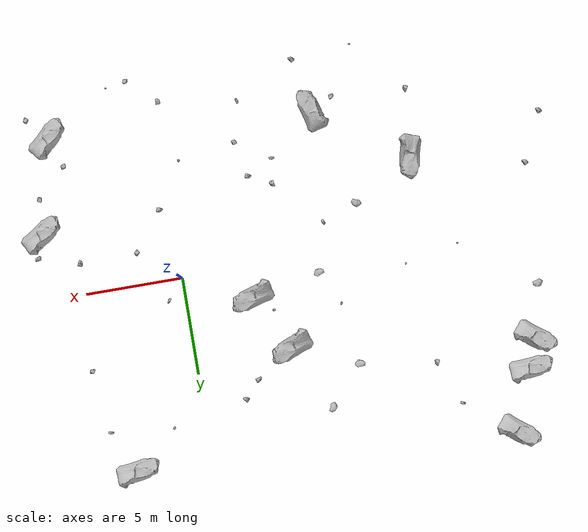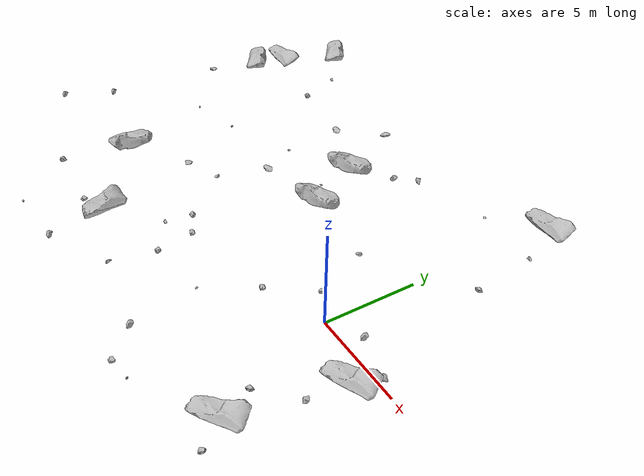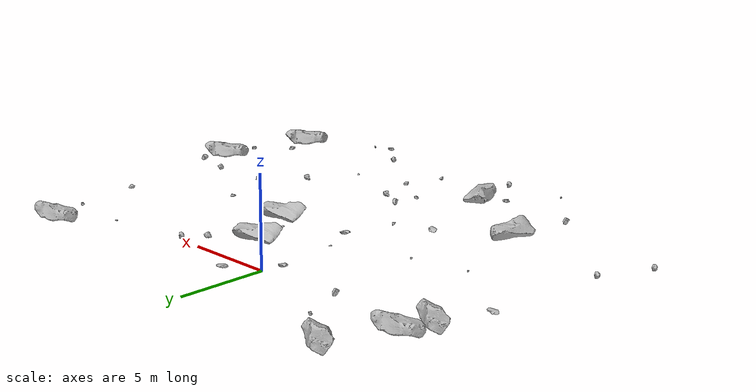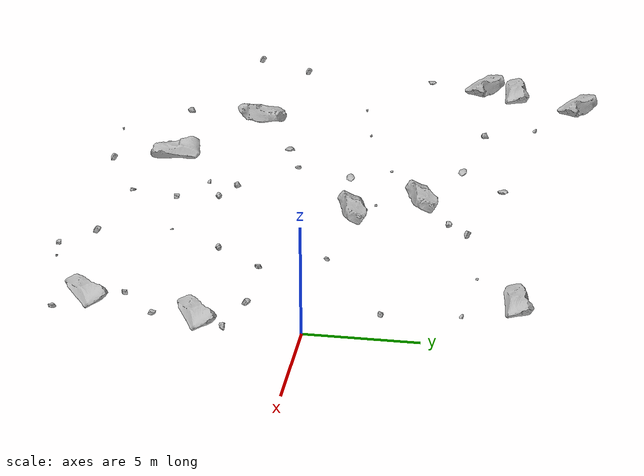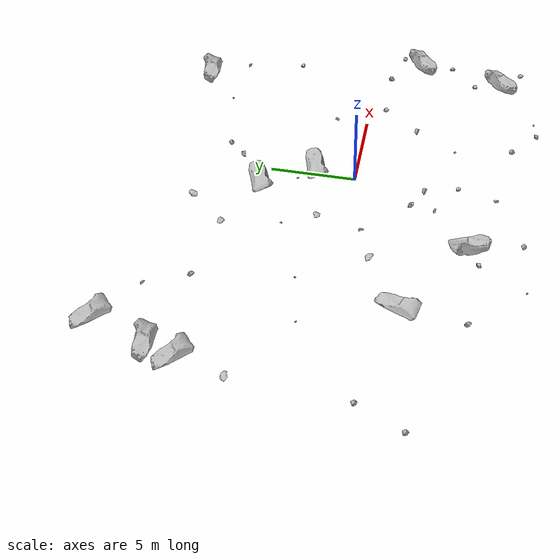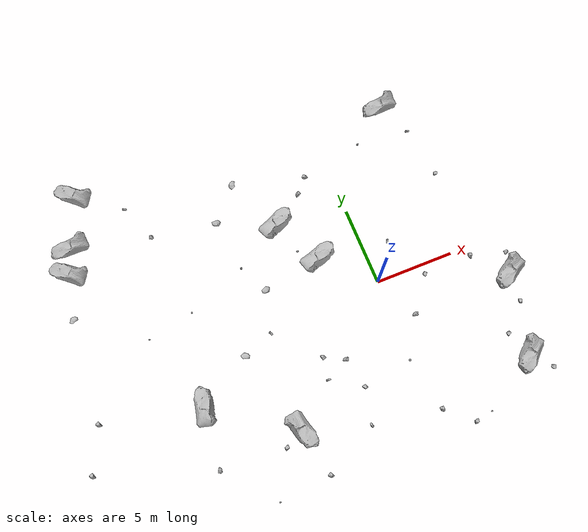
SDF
<sdf version="1.7">
 <world name="marsyard">
  <gravity>0 0 -9.81</gravity>
  <physics name="dart_physics" type="ignored">
   <max_step_size>0.003</max_step_size>
   <real_time_update_rate>333</real_time_update_rate>
   <real_time_factor>1.0</real_time_factor>
  </physics>
  <plugin filename="ignition-gazebo-physics-system" name="ignition::gazebo::systems::Physics"/>
  <plugin filename="ignition-gazebo-user-commands-system" name="ignition::gazebo::systems::UserCommands"/>
  <plugin filename="ignition-gazebo-scene-broadcaster-system" name="ignition::gazebo::systems::SceneBroadcaster"/>
  <plugin filename="ignition-gazebo-contact-system" name="ignition::gazebo::systems::Contact"/>
  <scene>
   <ambient>0.95 0.95 0.95 1</ambient>
   <background>0.70 0.70 0.70 1</background>
   <shadows>false</shadows>
  </scene>
  <light type="directional" name="sun">
   <cast_shadows>false</cast_shadows>
   <pose>0 0 30 0 0 0</pose>
   <diffuse>1 1 1 1</diffuse>
   <specular>0.15 0.15 0.15 1</specular>
   <direction>-0.35 0.1 -0.93</direction>
  </light>
  <model name="Rock_2">
   <static>true</static>
   <pose>0.3303 -3.4318 4.0000 0.0000 0.0000 -0.3512</pose>
   <link name="link">
    <visual name="visual">
     <geometry><mesh><uri>package://rock_generator/rocks_ws/rock_3/meshes/rock_3.stl</uri></mesh></geometry>
    </visual>
    <collision name="collision">
     <geometry><mesh><uri>package://rock_generator/rocks_ws/rock_3/meshes/rock_3.stl</uri></mesh></geometry>
    </collision>
   </link>
  </model>
  <model name="Rock_3">
   <static>true</static>
   <pose>6.2342 -3.1056 4.0000 0.0000 0.0000 0.7417</pose>
   <link name="link">
    <visual name="visual">
     <geometry><mesh><uri>package://rock_generator/rocks_ws/rock_4/meshes/rock_4.stl</uri></mesh></geometry>
    </visual>
    <collision name="collision">
     <geometry><mesh><uri>package://rock_generator/rocks_ws/rock_4/meshes/rock_4.stl</uri></mesh></geometry>
    </collision>
   </link>
  </model>
  <model name="Rock_4">
   <static>true</static>
   <pose>-8.1256 5.8169 4.0000 0.0000 0.0000 -0.2805</pose>
   <link name="link">
    <visual name="visual">
     <geometry><mesh><uri>package://rock_generator/rocks_ws/rock_8/meshes/rock_8.stl</uri></mesh></geometry>
    </visual>
    <collision name="collision">
     <geometry><mesh><uri>package://rock_generator/rocks_ws/rock_8/meshes/rock_8.stl</uri></mesh></geometry>
    </collision>
   </link>
  </model>
  <model name="Rock_5">
   <static>true</static>
   <pose>-4.3923 2.5072 4.0000 0.0000 0.0000 3.0596</pose>
   <link name="link">
    <visual name="visual">
     <geometry><mesh><uri>package://rock_generator/rocks_ws/rock_5/meshes/rock_5.stl</uri></mesh></geometry>
    </visual>
    <collision name="collision">
     <geometry><mesh><uri>package://rock_generator/rocks_ws/rock_5/meshes/rock_5.stl</uri></mesh></geometry>
    </collision>
   </link>
  </model>
  <model name="Rock_6">
   <static>true</static>
   <pose>-4.3188 -8.0412 4.0000 0.0000 0.0000 1.6611</pose>
   <link name="link">
    <visual name="visual">
     <geometry><mesh><uri>package://rock_generator/rocks_ws/rock_6/meshes/rock_6.stl</uri></mesh></geometry>
    </visual>
    <collision name="collision">
     <geometry><mesh><uri>package://rock_generator/rocks_ws/rock_6/meshes/rock_6.stl</uri></mesh></geometry>
    </collision>
   </link>
  </model>
  <model name="Rock_9">
   <static>true</static>
   <pose>-16.8665 6.0268 4.0000 0.0000 0.0000 -0.4904</pose>
   <link name="link">
    <visual name="visual">
     <geometry><mesh><uri>package://rock_generator/rocks_ws/rock_4/meshes/rock_4.stl</uri></mesh></geometry>
    </visual>
    <collision name="collision">
     <geometry><mesh><uri>package://rock_generator/rocks_ws/rock_4/meshes/rock_4.stl</uri></mesh></geometry>
    </collision>
   </link>
  </model>
  <model name="Rock_11">
   <static>true</static>
   <pose>4.9285 3.9514 4.0000 0.0000 0.0000 2.0337</pose>
   <link name="link">
    <visual name="visual">
     <geometry><mesh><uri>package://rock_generator/rocks_ws/rock_1/meshes/rock_1.stl</uri></mesh></geometry>
    </visual>
    <collision name="collision">
     <geometry><mesh><uri>package://rock_generator/rocks_ws/rock_1/meshes/rock_1.stl</uri></mesh></geometry>
    </collision>
   </link>
  </model>
  <model name="Rock_14">
   <static>true</static>
   <pose>-3.4149 1.7093 4.0000 0.0000 0.0000 -2.6896</pose>
   <link name="link">
    <visual name="visual">
     <geometry><mesh><uri>package://rock_generator/rocks_ws/rock_4/meshes/rock_4.stl</uri></mesh></geometry>
    </visual>
    <collision name="collision">
     <geometry><mesh><uri>package://rock_generator/rocks_ws/rock_4/meshes/rock_4.stl</uri></mesh></geometry>
    </collision>
   </link>
  </model>
  <model name="Rock_15">
   <static>true</static>
   <pose>-11.9683 6.4463 4.0000 0.0000 0.0000 -1.9149</pose>
   <link name="link">
    <visual name="visual">
     <geometry><mesh><uri>package://rock_generator/rocks_ws/rock_3/meshes/rock_3.stl</uri></mesh></geometry>
    </visual>
    <collision name="collision">
     <geometry><mesh><uri>package://rock_generator/rocks_ws/rock_3/meshes/rock_3.stl</uri></mesh></geometry>
    </collision>
   </link>
  </model>
  <model name="Rock_16">
   <static>true</static>
   <pose>-5.4471 -3.6963 4.0000 0.0000 0.0000 -1.3734</pose>
   <link name="link">
    <visual name="visual">
     <geometry><mesh><uri>package://rock_generator/rocks_ws/rock_3/meshes/rock_3.stl</uri></mesh></geometry>
    </visual>
    <collision name="collision">
     <geometry><mesh><uri>package://rock_generator/rocks_ws/rock_3/meshes/rock_3.stl</uri></mesh></geometry>
    </collision>
   </link>
  </model>
  <model name="Rock_17">
   <static>true</static>
   <pose>4.5362 7.1053 4.0000 0.0000 0.0000 -0.4085</pose>
   <link name="link">
    <visual name="visual">
     <geometry><mesh><uri>package://rock_generator/rocks_ws/rock_6/meshes/rock_6.stl</uri></mesh></geometry>
    </visual>
    <collision name="collision">
     <geometry><mesh><uri>package://rock_generator/rocks_ws/rock_6/meshes/rock_6.stl</uri></mesh></geometry>
    </collision>
   </link>
  </model>
  <model name="Rock_19">
   <static>true</static>
   <pose>4.6888 -6.2804 4.0000 0.0000 0.0000 2.5442</pose>
   <link name="link">
    <visual name="visual">
     <geometry><mesh><uri>package://rock_generator/rocks_ws/rock_1/meshes/rock_1.stl</uri></mesh></geometry>
    </visual>
    <collision name="collision">
     <geometry><mesh><uri>package://rock_generator/rocks_ws/rock_1/meshes/rock_1.stl</uri></mesh></geometry>
    </collision>
   </link>
  </model>
  <model name="Rock_20">
   <static>true</static>
   <pose>-12.2752 -3.8116 4.0000 0.0000 0.0000 -1.6397</pose>
   <link name="link">
    <visual name="visual">
     <geometry><mesh><uri>package://rock_generator/rocks_ws/rock_4/meshes/rock_4.stl</uri></mesh></geometry>
    </visual>
    <collision name="collision">
     <geometry><mesh><uri>package://rock_generator/rocks_ws/rock_4/meshes/rock_4.stl</uri></mesh></geometry>
    </collision>
   </link>
  </model>
  <model name="Rock_21">
   <static>true</static>
   <pose>6.6583 -1.8551 4.0000 0.0000 0.0000 -3.1263</pose>
   <link name="link">
    <visual name="visual">
     <geometry><mesh><uri>package://rock_generator/rocks_ws/rock_3/meshes/rock_3.stl</uri></mesh></geometry>
    </visual>
    <collision name="collision">
     <geometry><mesh><uri>package://rock_generator/rocks_ws/rock_3/meshes/rock_3.stl</uri></mesh></geometry>
    </collision>
   </link>
  </model>
  <model name="Rock_22">
   <static>true</static>
   <pose>-3.8677 -6.0231 4.0000 0.0000 0.0000 1.0425</pose>
   <link name="link">
    <visual name="visual">
     <geometry><mesh><uri>package://rock_generator/rocks_ws/rock_1/meshes/rock_1.stl</uri></mesh></geometry>
    </visual>
    <collision name="collision">
     <geometry><mesh><uri>package://rock_generator/rocks_ws/rock_1/meshes/rock_1.stl</uri></mesh></geometry>
    </collision>
   </link>
  </model>
  <model name="Rock_23">
   <static>true</static>
   <pose>-0.9796 -5.5935 4.0000 0.0000 0.0000 -0.6540</pose>
   <link name="link">
    <visual name="visual">
     <geometry><mesh><uri>package://rock_generator/rocks_ws/rock_5/meshes/rock_5.stl</uri></mesh></geometry>
    </visual>
    <collision name="collision">
     <geometry><mesh><uri>package://rock_generator/rocks_ws/rock_5/meshes/rock_5.stl</uri></mesh></geometry>
    </collision>
   </link>
  </model>
  <model name="Rock_24">
   <static>true</static>
   <pose>-17.4575 3.4123 4.0000 0.0000 0.0000 3.1124</pose>
   <link name="link">
    <visual name="visual">
     <geometry><mesh><uri>package://rock_generator/rocks_ws/rock_8/meshes/rock_8.stl</uri></mesh></geometry>
    </visual>
    <collision name="collision">
     <geometry><mesh><uri>package://rock_generator/rocks_ws/rock_8/meshes/rock_8.stl</uri></mesh></geometry>
    </collision>
   </link>
  </model>
  <model name="Rock_27">
   <static>true</static>
   <pose>-6.4659 7.7320 4.0000 0.0000 0.0000 -2.2601</pose>
   <link name="link">
    <visual name="visual">
     <geometry><mesh><uri>package://rock_generator/rocks_ws/rock_8/meshes/rock_8.stl</uri></mesh></geometry>
    </visual>
    <collision name="collision">
     <geometry><mesh><uri>package://rock_generator/rocks_ws/rock_8/meshes/rock_8.stl</uri></mesh></geometry>
    </collision>
   </link>
  </model>
  <model name="Rock_29">
   <static>true</static>
   <pose>0.9808 -9.9054 4.0000 0.0000 0.0000 -0.8944</pose>
   <link name="link">
    <visual name="visual">
     <geometry><mesh><uri>package://rock_generator/rocks_ws/rock_1/meshes/rock_1.stl</uri></mesh></geometry>
    </visual>
    <collision name="collision">
     <geometry><mesh><uri>package://rock_generator/rocks_ws/rock_1/meshes/rock_1.stl</uri></mesh></geometry>
    </collision>
   </link>
  </model>
  <model name="Rock_30">
   <static>true</static>
   <pose>5.1803 -7.7557 4.0000 0.0000 0.0000 0.9147</pose>
   <link name="link">
    <visual name="visual">
     <geometry><mesh><uri>package://rock_generator/rocks_ws/rock_4/meshes/rock_4.stl</uri></mesh></geometry>
    </visual>
    <collision name="collision">
     <geometry><mesh><uri>package://rock_generator/rocks_ws/rock_4/meshes/rock_4.stl</uri></mesh></geometry>
    </collision>
   </link>
  </model>
  <model name="Rock_31">
   <static>true</static>
   <pose>-12.7430 -7.1829 4.0000 0.0000 0.0000 -2.0245</pose>
   <link name="link">
    <visual name="visual">
     <geometry><mesh><uri>package://rock_generator/rocks_ws/rock_3/meshes/rock_3.stl</uri></mesh></geometry>
    </visual>
    <collision name="collision">
     <geometry><mesh><uri>package://rock_generator/rocks_ws/rock_3/meshes/rock_3.stl</uri></mesh></geometry>
    </collision>
   </link>
  </model>
  <model name="Rock_33">
   <static>true</static>
   <pose>-17.7862 -2.5647 4.0000 0.0000 0.0000 1.9595</pose>
   <link name="link">
    <visual name="visual">
     <geometry><mesh><uri>package://rock_generator/rocks_ws/rock_3/meshes/rock_3.stl</uri></mesh></geometry>
    </visual>
    <collision name="collision">
     <geometry><mesh><uri>package://rock_generator/rocks_ws/rock_3/meshes/rock_3.stl</uri></mesh></geometry>
    </collision>
   </link>
  </model>
  <model name="Rock_35">
   <static>true</static>
   <pose>1.8194 -1.4427 4.0000 0.0000 0.0000 2.9628</pose>
   <link name="link">
    <visual name="visual">
     <geometry><mesh><uri>package://rock_generator/rocks_ws/rock_1/meshes/rock_1.stl</uri></mesh></geometry>
    </visual>
    <collision name="collision">
     <geometry><mesh><uri>package://rock_generator/rocks_ws/rock_1/meshes/rock_1.stl</uri></mesh></geometry>
    </collision>
   </link>
  </model>
  <model name="Rock_36">
   <static>true</static>
   <pose>1.4273 7.4034 4.0000 0.0000 0.0000 0.8784</pose>
   <link name="link">
    <visual name="visual">
     <geometry><mesh><uri>package://rock_generator/rocks_ws/rock_5/meshes/rock_5.stl</uri></mesh></geometry>
    </visual>
    <collision name="collision">
     <geometry><mesh><uri>package://rock_generator/rocks_ws/rock_5/meshes/rock_5.stl</uri></mesh></geometry>
    </collision>
   </link>
  </model>
  <model name="Rock_37">
   <static>true</static>
   <pose>-7.2449 -9.5647 4.0000 0.0000 0.0000 2.0903</pose>
   <link name="link">
    <visual name="visual">
     <geometry><mesh><uri>package://rock_generator/rocks_ws/rock_3/meshes/rock_3.stl</uri></mesh></geometry>
    </visual>
    <collision name="collision">
     <geometry><mesh><uri>package://rock_generator/rocks_ws/rock_3/meshes/rock_3.stl</uri></mesh></geometry>
    </collision>
   </link>
  </model>
  <model name="Rock_38">
   <static>true</static>
   <pose>0.6354 1.1807 4.0000 0.0000 0.0000 -2.3245</pose>
   <link name="link">
    <visual name="visual">
     <geometry><mesh><uri>package://rock_generator/rocks_ws/rock_6/meshes/rock_6.stl</uri></mesh></geometry>
    </visual>
    <collision name="collision">
     <geometry><mesh><uri>package://rock_generator/rocks_ws/rock_6/meshes/rock_6.stl</uri></mesh></geometry>
    </collision>
   </link>
  </model>
  <model name="Rock_39">
   <static>true</static>
   <pose>-18.8922 -4.9989 4.0000 0.0000 0.0000 1.8228</pose>
   <link name="link">
    <visual name="visual">
     <geometry><mesh><uri>package://rock_generator/rocks_ws/rock_3/meshes/rock_3.stl</uri></mesh></geometry>
    </visual>
    <collision name="collision">
     <geometry><mesh><uri>package://rock_generator/rocks_ws/rock_3/meshes/rock_3.stl</uri></mesh></geometry>
    </collision>
   </link>
  </model>
  <model name="Rock_41">
   <static>true</static>
   <pose>-7.7335 2.7428 4.0000 0.0000 0.0000 1.4465</pose>
   <link name="link">
    <visual name="visual">
     <geometry><mesh><uri>package://rock_generator/rocks_ws/rock_5/meshes/rock_5.stl</uri></mesh></geometry>
    </visual>
    <collision name="collision">
     <geometry><mesh><uri>package://rock_generator/rocks_ws/rock_5/meshes/rock_5.stl</uri></mesh></geometry>
    </collision>
   </link>
  </model>
  <model name="Rock_42">
   <static>true</static>
   <pose>-12.7890 8.6111 4.0000 0.0000 0.0000 -0.5817</pose>
   <link name="link">
    <visual name="visual">
     <geometry><mesh><uri>package://rock_generator/rocks_ws/rock_6/meshes/rock_6.stl</uri></mesh></geometry>
    </visual>
    <collision name="collision">
     <geometry><mesh><uri>package://rock_generator/rocks_ws/rock_6/meshes/rock_6.stl</uri></mesh></geometry>
    </collision>
   </link>
  </model>
  <model name="Rock_43">
   <static>true</static>
   <pose>-11.2032 1.3530 4.0000 0.0000 0.0000 0.9791</pose>
   <link name="link">
    <visual name="visual">
     <geometry><mesh><uri>package://rock_generator/rocks_ws/rock_9/meshes/rock_9.stl</uri></mesh></geometry>
    </visual>
    <collision name="collision">
     <geometry><mesh><uri>package://rock_generator/rocks_ws/rock_9/meshes/rock_9.stl</uri></mesh></geometry>
    </collision>
   </link>
  </model>
  <model name="Rock_44">
   <static>true</static>
   <pose>-16.3942 7.4628 4.0000 0.0000 0.0000 0.2526</pose>
   <link name="link">
    <visual name="visual">
     <geometry><mesh><uri>package://rock_generator/rocks_ws/rock_4/meshes/rock_4.stl</uri></mesh></geometry>
    </visual>
    <collision name="collision">
     <geometry><mesh><uri>package://rock_generator/rocks_ws/rock_4/meshes/rock_4.stl</uri></mesh></geometry>
    </collision>
   </link>
  </model>
  <model name="Rock_45">
   <static>true</static>
   <pose>4.7477 -1.4108 4.0000 0.0000 0.0000 1.1989</pose>
   <link name="link">
    <visual name="visual">
     <geometry><mesh><uri>package://rock_generator/rocks_ws/rock_3/meshes/rock_3.stl</uri></mesh></geometry>
    </visual>
    <collision name="collision">
     <geometry><mesh><uri>package://rock_generator/rocks_ws/rock_3/meshes/rock_3.stl</uri></mesh></geometry>
    </collision>
   </link>
  </model>
  <model name="Rock_46">
   <static>true</static>
   <pose>6.0931 -4.8287 4.0000 0.0000 0.0000 0.3018</pose>
   <link name="link">
    <visual name="visual">
     <geometry><mesh><uri>package://rock_generator/rocks_ws/rock_1/meshes/rock_1.stl</uri></mesh></geometry>
    </visual>
    <collision name="collision">
     <geometry><mesh><uri>package://rock_generator/rocks_ws/rock_1/meshes/rock_1.stl</uri></mesh></geometry>
    </collision>
   </link>
  </model>
  <model name="Rock_47">
   <static>true</static>
   <pose>-4.8883 4.4787 4.0000 0.0000 0.0000 -2.5950</pose>
   <link name="link">
    <visual name="visual">
     <geometry><mesh><uri>package://rock_generator/rocks_ws/rock_4/meshes/rock_4.stl</uri></mesh></geometry>
    </visual>
    <collision name="collision">
     <geometry><mesh><uri>package://rock_generator/rocks_ws/rock_4/meshes/rock_4.stl</uri></mesh></geometry>
    </collision>
   </link>
  </model>
  <model name="Rock_48">
   <static>true</static>
   <pose>-5.5479 -4.9311 4.0000 0.0000 0.0000 -0.2529</pose>
   <link name="link">
    <visual name="visual">
     <geometry><mesh><uri>package://rock_generator/rocks_ws/rock_6/meshes/rock_6.stl</uri></mesh></geometry>
    </visual>
    <collision name="collision">
     <geometry><mesh><uri>package://rock_generator/rocks_ws/rock_6/meshes/rock_6.stl</uri></mesh></geometry>
    </collision>
   </link>
  </model>
  <model name="Rock_50">
   <static>true</static>
   <pose>-8.9624 -7.4300 4.0000 0.0000 0.0000 -0.6560</pose>
   <link name="link">
    <visual name="visual">
     <geometry><mesh><uri>package://rock_generator/rocks_ws/rock_1/meshes/rock_1.stl</uri></mesh></geometry>
    </visual>
    <collision name="collision">
     <geometry><mesh><uri>package://rock_generator/rocks_ws/rock_1/meshes/rock_1.stl</uri></mesh></geometry>
    </collision>
   </link>
  </model>
  <model name="Rock_51">
   <static>true</static>
   <pose>-4.2714 -4.3328 4.0000 0.0000 0.0000 -0.4366</pose>
   <link name="link">
    <visual name="visual">
     <geometry><mesh><uri>package://rock_generator/rocks_ws/rock_3/meshes/rock_3.stl</uri></mesh></geometry>
    </visual>
    <collision name="collision">
     <geometry><mesh><uri>package://rock_generator/rocks_ws/rock_3/meshes/rock_3.stl</uri></mesh></geometry>
    </collision>
   </link>
  </model>
  <model name="Rock_52">
   <static>true</static>
   <pose>1.9897 -9.7498 4.0000 0.0000 0.0000 -0.6711</pose>
   <link name="link">
    <visual name="visual">
     <geometry><mesh><uri>package://rock_generator/rocks_ws/rock_9/meshes/rock_9.stl</uri></mesh></geometry>
    </visual>
    <collision name="collision">
     <geometry><mesh><uri>package://rock_generator/rocks_ws/rock_9/meshes/rock_9.stl</uri></mesh></geometry>
    </collision>
   </link>
  </model>
  <model name="Rock_53">
   <static>true</static>
   <pose>-6.8805 1.0334 4.0000 0.0000 0.0000 0.0814</pose>
   <link name="link">
    <visual name="visual">
     <geometry><mesh><uri>package://rock_generator/rocks_ws/rock_8/meshes/rock_8.stl</uri></mesh></geometry>
    </visual>
    <collision name="collision">
     <geometry><mesh><uri>package://rock_generator/rocks_ws/rock_8/meshes/rock_8.stl</uri></mesh></geometry>
    </collision>
   </link>
  </model>
  <model name="Rock_54">
   <static>true</static>
   <pose>-10.2990 -9.8792 4.0000 0.0000 0.0000 2.3531</pose>
   <link name="link">
    <visual name="visual">
     <geometry><mesh><uri>package://rock_generator/rocks_ws/rock_9/meshes/rock_9.stl</uri></mesh></geometry>
    </visual>
    <collision name="collision">
     <geometry><mesh><uri>package://rock_generator/rocks_ws/rock_9/meshes/rock_9.stl</uri></mesh></geometry>
    </collision>
   </link>
  </model>
  <model name="Rock_56">
   <static>true</static>
   <pose>-0.3501 -8.6612 4.0000 0.0000 0.0000 1.5263</pose>
   <link name="link">
    <visual name="visual">
     <geometry><mesh><uri>package://rock_generator/rocks_ws/rock_3/meshes/rock_3.stl</uri></mesh></geometry>
    </visual>
    <collision name="collision">
     <geometry><mesh><uri>package://rock_generator/rocks_ws/rock_3/meshes/rock_3.stl</uri></mesh></geometry>
    </collision>
   </link>
  </model>
  <model name="Rock_57">
   <static>true</static>
   <pose>6.1667 -8.8405 4.0000 0.0000 0.0000 -2.9960</pose>
   <link name="link">
    <visual name="visual">
     <geometry><mesh><uri>package://rock_generator/rocks_ws/rock_1/meshes/rock_1.stl</uri></mesh></geometry>
    </visual>
    <collision name="collision">
     <geometry><mesh><uri>package://rock_generator/rocks_ws/rock_1/meshes/rock_1.stl</uri></mesh></geometry>
    </collision>
   </link>
  </model>
  <model name="Rock_58">
   <static>true</static>
   <pose>3.4870 9.1754 4.0000 0.0000 0.0000 0.3149</pose>
   <link name="link">
    <visual name="visual">
     <geometry><mesh><uri>package://rock_generator/rocks_ws/rock_4/meshes/rock_4.stl</uri></mesh></geometry>
    </visual>
    <collision name="collision">
     <geometry><mesh><uri>package://rock_generator/rocks_ws/rock_4/meshes/rock_4.stl</uri></mesh></geometry>
    </collision>
   </link>
  </model>
  <model name="Rock_59">
   <static>true</static>
   <pose>-7.5224 -1.3669 4.0000 0.0000 0.0000 -1.3011</pose>
   <link name="link">
    <visual name="visual">
     <geometry><mesh><uri>package://rock_generator/rocks_ws/rock_6/meshes/rock_6.stl</uri></mesh></geometry>
    </visual>
    <collision name="collision">
     <geometry><mesh><uri>package://rock_generator/rocks_ws/rock_6/meshes/rock_6.stl</uri></mesh></geometry>
    </collision>
   </link>
  </model>
  <model name="Rock_60">
   <static>true</static>
   <pose>-9.2813 -2.0221 4.0000 0.0000 0.0000 2.4759</pose>
   <link name="link">
    <visual name="visual">
     <geometry><mesh><uri>package://rock_generator/rocks_ws/rock_8/meshes/rock_8.stl</uri></mesh></geometry>
    </visual>
    <collision name="collision">
     <geometry><mesh><uri>package://rock_generator/rocks_ws/rock_8/meshes/rock_8.stl</uri></mesh></geometry>
    </collision>
   </link>
  </model>
  <model name="Rock_61">
   <static>true</static>
   <pose>-2.2345 6.6796 4.0000 0.0000 0.0000 2.3510</pose>
   <link name="link">
    <visual name="visual">
     <geometry><mesh><uri>package://rock_generator/rocks_ws/rock_3/meshes/rock_3.stl</uri></mesh></geometry>
    </visual>
    <collision name="collision">
     <geometry><mesh><uri>package://rock_generator/rocks_ws/rock_3/meshes/rock_3.stl</uri></mesh></geometry>
    </collision>
   </link>
  </model>
  <model name="Rock_63">
   <static>true</static>
   <pose>-3.0455 5.6655 4.0000 0.0000 0.0000 0.2756</pose>
   <link name="link">
    <visual name="visual">
     <geometry><mesh><uri>package://rock_generator/rocks_ws/rock_3/meshes/rock_3.stl</uri></mesh></geometry>
    </visual>
    <collision name="collision">
     <geometry><mesh><uri>package://rock_generator/rocks_ws/rock_3/meshes/rock_3.stl</uri></mesh></geometry>
    </collision>
   </link>
  </model>
  <model name="Rock_65">
   <static>true</static>
   <pose>-7.8626 -6.9452 4.0000 0.0000 0.0000 2.0009</pose>
   <link name="link">
    <visual name="visual">
     <geometry><mesh><uri>package://rock_generator/rocks_ws/rock_4/meshes/rock_4.stl</uri></mesh></geometry>
    </visual>
    <collision name="collision">
     <geometry><mesh><uri>package://rock_generator/rocks_ws/rock_4/meshes/rock_4.stl</uri></mesh></geometry>
    </collision>
   </link>
  </model>
  <model name="Rock_69">
   <static>true</static>
   <pose>-13.8819 0.7856 4.0000 0.0000 0.0000 2.1276</pose>
   <link name="link">
    <visual name="visual">
     <geometry><mesh><uri>package://rock_generator/rocks_ws/rock_9/meshes/rock_9.stl</uri></mesh></geometry>
    </visual>
    <collision name="collision">
     <geometry><mesh><uri>package://rock_generator/rocks_ws/rock_9/meshes/rock_9.stl</uri></mesh></geometry>
    </collision>
   </link>
  </model>
  <model name="Rock_70">
   <static>true</static>
   <pose>-15.2771 10.4604 4.0000 0.0000 0.0000 -0.4990</pose>
   <link name="link">
    <visual name="visual">
     <geometry><mesh><uri>package://rock_generator/rocks_ws/rock_4/meshes/rock_4.stl</uri></mesh></geometry>
    </visual>
    <collision name="collision">
     <geometry><mesh><uri>package://rock_generator/rocks_ws/rock_4/meshes/rock_4.stl</uri></mesh></geometry>
    </collision>
   </link>
  </model>
 </world>
</sdf>
